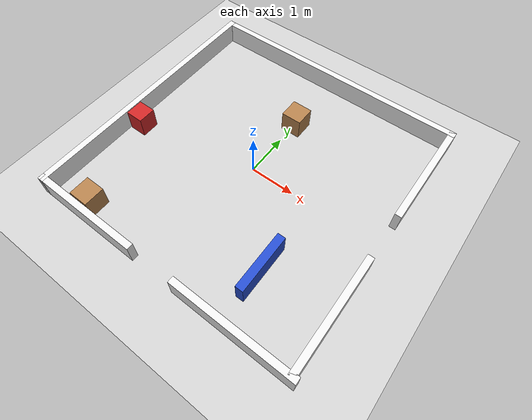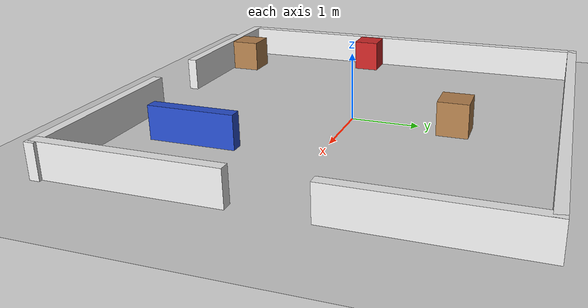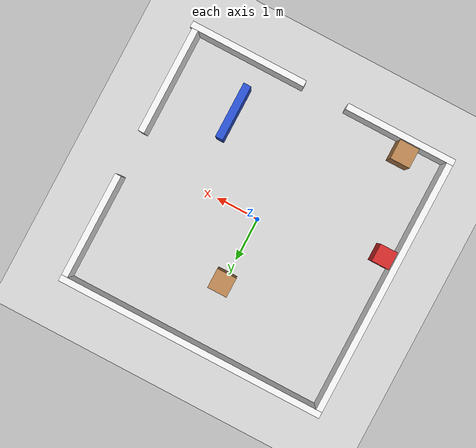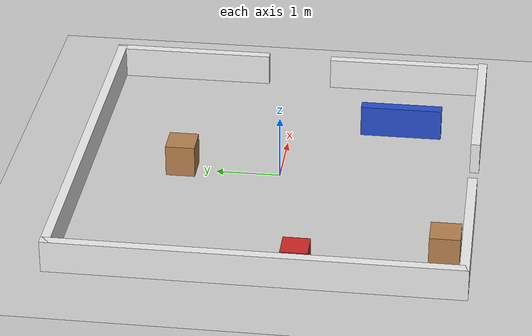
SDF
<?xml version="1.0" ?>
<sdf version='1.7'>
  <world name='default'>

    <light name='sun' type='directional'>
      <cast_shadows>1</cast_shadows>
      <pose>0 0 10 0 0 0</pose>
      <diffuse>0.8 0.8 0.8 1</diffuse>
      <specular>0.2 0.2 0.2 1</specular>
      <attenuation><range>1000</range><constant>0.9</constant><linear>0.01</linear><quadratic>0.001</quadratic></attenuation>
      <direction>-0.5 0.1 -0.9</direction>
    </light>

    <gravity>0 0 -9.8</gravity>
    <atmosphere type='adiabatic'/>
    <physics type='ode'>
      <max_step_size>0.001</max_step_size>
      <real_time_factor>1</real_time_factor>
      <real_time_update_rate>1000</real_time_update_rate>
    </physics>
    <scene>
      <ambient>0.4 0.4 0.4 1</ambient>
      <background>0.7 0.7 0.7 1</background>
      <shadows>1</shadows>
    </scene>

    <gui fullscreen='0'>
      <camera name='user_camera'>
        <pose>0 0 14.0 0 1.5708 0</pose>
        <view_controller>orbit</view_controller>
        <projection_type>perspective</projection_type>
      </camera>
    </gui>

    <!-- ground -->
    <model name='ground_plane'><static>1</static>
      <link name='link'>
        <collision name='collision'>
          <geometry><plane><normal>0 0 1</normal><size>20 20</size></plane></geometry>
          <surface><friction><ode><mu>1.0</mu><mu2>1.0</mu2></ode></friction></surface>
        </collision>
        <visual name='visual'>
          <cast_shadows>0</cast_shadows>
          <geometry><plane><normal>0 0 1</normal><size>20 20</size></plane></geometry>
          <material><script><uri>file://media/materials/scripts/gazebo.material</uri><name>Gazebo/Grey</name></script></material>
        </visual>
      </link>
    </model>

    <!-- == WALLS  6x6m room, 0.2m thick, 0.5m tall ==
         South door gap: world x≈[−0.476, 0.524] (1m, centre x=0.048)
         East  door gap: world y≈[−1.021, 0.024] (1m, centre y=−0.045) -->

    <model name='wall_north'><static>1</static><pose>0.000 3.024 0.25 0 0 0</pose><link name='link'>
      <collision name='c'><geometry><box><size>6.190 0.143 0.5</size></box></geometry></collision>
      <visual name='v'><geometry><box><size>6.190 0.143 0.5</size></box></geometry><material><script><uri>file://media/materials/scripts/gazebo.material</uri><name>Gazebo/White</name></script></material></visual>
    </link></model>

    <model name='wall_south_left'><static>1</static><pose>-1.821 -2.976 0.25 0 0 0</pose><link name='link'>
      <collision name='c'><geometry><box><size>2.548 0.143 0.5</size></box></geometry></collision>
      <visual name='v'><geometry><box><size>2.548 0.143 0.5</size></box></geometry><material><script><uri>file://media/materials/scripts/gazebo.material</uri><name>Gazebo/White</name></script></material></visual>
    </link></model>

    <model name='wall_south_right'><static>1</static><pose>1.798 -2.976 0.25 0 0 0</pose><link name='link'>
      <collision name='c'><geometry><box><size>2.690 0.143 0.5</size></box></geometry></collision>
      <visual name='v'><geometry><box><size>2.690 0.143 0.5</size></box></geometry><material><script><uri>file://media/materials/scripts/gazebo.material</uri><name>Gazebo/White</name></script></material></visual>
    </link></model>

    <model name='wall_west'><static>1</static><pose>-3.024 0.024 0.25 0 0 0</pose><link name='link'>
      <collision name='c'><geometry><box><size>0.143 6.143 0.5</size></box></geometry></collision>
      <visual name='v'><geometry><box><size>0.143 6.143 0.5</size></box></geometry><material><script><uri>file://media/materials/scripts/gazebo.material</uri><name>Gazebo/White</name></script></material></visual>
    </link></model>

    <model name='wall_east_top'><static>1</static><pose>3.024 1.821 0.25 0 0 0</pose><link name='link'>
      <collision name='c'><geometry><box><size>0.143 2.548 0.5</size></box></geometry></collision>
      <visual name='v'><geometry><box><size>0.143 2.548 0.5</size></box></geometry><material><script><uri>file://media/materials/scripts/gazebo.material</uri><name>Gazebo/White</name></script></material></visual>
    </link></model>

    <model name='wall_east_bottom'><static>1</static><pose>3.024 -1.750 0.25 0 0 0</pose><link name='link'>
      <collision name='c'><geometry><box><size>0.143 2.548 0.5</size></box></geometry></collision>
      <visual name='v'><geometry><box><size>0.143 2.548 0.5</size></box></geometry><material><script><uri>file://media/materials/scripts/gazebo.material</uri><name>Gazebo/White</name></script></material></visual>
    </link></model>

    <!-- == DIVIDER  vertical fin, 0.5m tall == -->
    <!-- divider_vert: centre=(1.513, -1.758), 0.174x1.274m -->
    <model name='divider_vert'><static>1</static><pose>1.513 -1.758 0.25 0 0 0</pose><link name='link'>
      <collision name='c'><geometry><box><size>0.174 1.274 0.5</size></box></geometry></collision>
      <visual name='v'><geometry><box><size>0.174 1.274 0.5</size></box></geometry><material><script><uri>file://media/materials/scripts/gazebo.material</uri><name>Gazebo/Blue</name></script></material></visual>
    </link></model>

    <!-- == CABINETS  0.5m tall == -->
    <!-- cabinet1: centre=(0.036, 1.531) -->
    <model name='cabinet1'><static>1</static><pose>0.036 1.531 0.25 0 0 0</pose><link name='link'>
      <collision name='c'><geometry><box><size>0.452 0.452 0.5</size></box></geometry></collision>
      <visual name='v'><geometry><box><size>0.452 0.452 0.5</size></box></geometry><material><script><uri>file://media/materials/scripts/gazebo.material</uri><name>Gazebo/WoodPallet</name></script></material></visual>
    </link></model>

    <!-- cabinet2: centre=(-2.088, -2.660) -->
    <model name='cabinet2'><static>1</static><pose>-2.088 -2.660 0.25 0 0 0</pose><link name='link'>
      <collision name='c'><geometry><box><size>0.452 0.452 0.5</size></box></geometry></collision>
      <visual name='v'><geometry><box><size>0.452 0.452 0.5</size></box></geometry><material><script><uri>file://media/materials/scripts/gazebo.material</uri><name>Gazebo/WoodPallet</name></script></material></visual>
    </link></model>

    <model name='red_box'><static>1</static><pose>-2.729 -0.552 0.25 0 0 0</pose><link name='link'>
      <collision name='c'><geometry><box><size>0.405 0.405 0.5</size></box></geometry></collision>
      <visual name='v'><geometry><box><size>0.405 0.405 0.5</size></box></geometry><material><script><uri>file://media/materials/scripts/gazebo.material</uri><name>Gazebo/Red</name></script></material></visual>
    </link></model>

  </world>
</sdf>
